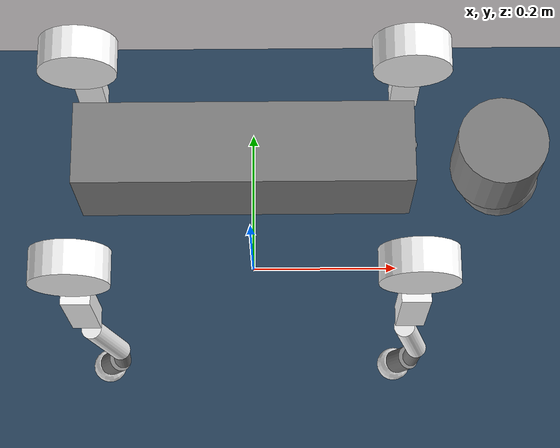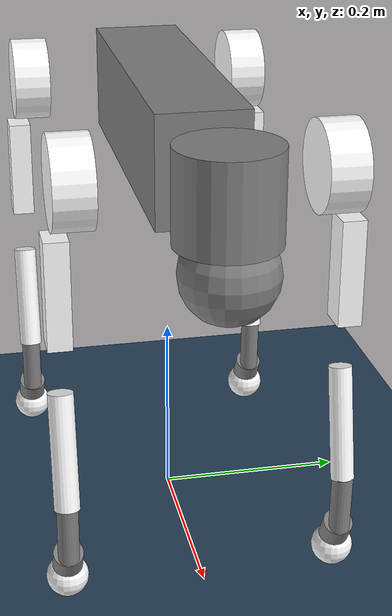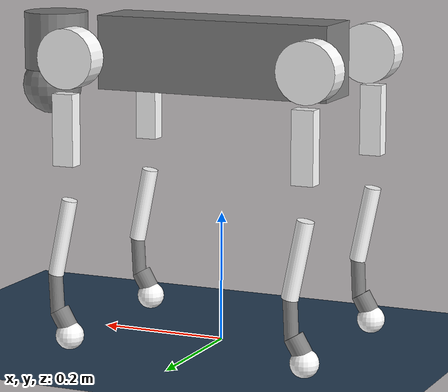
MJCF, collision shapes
<mujoco model="go2 scene">
  <compiler angle="radian" meshdir="assets/"/>

  <option impratio="100" cone="elliptic"/>

  <visual>
    <global azimuth="-140" elevation="-20"/>
    <headlight diffuse="0.6 0.6 0.6" specular="0.9 0.9 0.9"/>
    <rgba haze="0.15 0.25 0.35 1"/>
  </visual>

  <statistic meansize="0.144785" extent="0.8" center="1 0.7 1"/>

  <default>
    <joint armature="0.01" damping="0.001" frictionloss="0.1"/>
    <default class="go2">
      <joint damping="1" frictionloss="0.2"/>
      <geom condim="1" friction="0.4" margin="0.001"/>
      <default class="visual">
        <geom type="mesh" contype="0" conaffinity="0" group="2"/>
      </default>
      <default class="collision">
        <geom group="3"/>
      </default>
    </default>
  </default>

  <asset>
    <texture type="skybox" builtin="flat" rgb1="0 0 0" rgb2="0 0 0" width="512" height="3072"/>
    <texture type="2d" name="groundplane" builtin="checker" mark="edge" rgb1="0.2 0.3 0.4" rgb2="0.1 0.2 0.3" markrgb="0.8 0.8 0.8" width="300" height="300"/>
    <material name="metal" rgba="0.9 0.95 0.95 1"/>
    <material name="black" rgba="0 0 0 1"/>
    <material name="white"/>
    <material name="gray" rgba="0.671705 0.692426 0.77427 1"/>
    <material name="groundplane" texture="groundplane" texuniform="true" texrepeat="5 5" reflectance="0.2"/>
    <mesh name="base_0" file="base_0.obj"/>
    <mesh name="base_1" file="base_1.obj"/>
    <mesh name="base_2" file="base_2.obj"/>
    <mesh name="base_3" file="base_3.obj"/>
    <mesh name="base_4" file="base_4.obj"/>
    <mesh name="hip_0" file="hip_0.obj"/>
    <mesh name="hip_1" file="hip_1.obj"/>
    <mesh name="thigh_0" file="thigh_0.obj"/>
    <mesh name="thigh_1" file="thigh_1.obj"/>
    <mesh name="thigh_mirror_0" file="thigh_mirror_0.obj"/>
    <mesh name="thigh_mirror_1" file="thigh_mirror_1.obj"/>
    <mesh name="calf_0" file="calf_0.obj"/>
    <mesh name="calf_1" file="calf_1.obj"/>
    <mesh name="calf_mirror_0" file="calf_mirror_0.obj"/>
    <mesh name="calf_mirror_1" file="calf_mirror_1.obj"/>
    <mesh name="foot" file="foot.obj"/>
  </asset>

  <worldbody>
    <geom name="floor" size="0 0 0.05" type="plane" material="groundplane"/>
    <light pos="1 0 3.5" dir="0 0 -1" directional="true"/>
    <body name="base" childclass="go2" pos="0 0 0.445">
      <inertial pos="0.021112 0 -0.005366" quat="-0.000543471 0.713435 -0.00173769 0.700719" mass="6.921" diaginertia="0.107027 0.0980771 0.0244531"/>
      <joint name="root" type="free" limited="false" actuatorfrclimited="false" armature="0" damping="0" frictionloss="0"/>
      <geom class="visual" material="black" mesh="base_0"/>
      <geom class="visual" material="black" mesh="base_1"/>
      <geom class="visual" material="black" mesh="base_2"/>
      <geom class="visual" material="white" mesh="base_3"/>
      <geom class="visual" material="gray" mesh="base_4"/>
      <geom name="base_box" class="collision" size="0.1881 0.04675 0.057" type="box"/>
      <geom name="base_cyl1" class="collision" size="0.05 0.045" pos="0.285 0 0.01" type="cylinder"/>
      <geom name="base_sphere1" class="collision" size="0.047" pos="0.293 0 -0.06"/>
      <body name="FL_hip" pos="0.1934 0.0465 0">
        <inertial pos="-0.0054 0.00194 -0.000105" quat="0.497014 0.499245 0.505462 0.498237" mass="0.678" diaginertia="0.00088403 0.000596003 0.000479967"/>
        <joint name="FL_hip_joint" pos="0 0 0" axis="1 0 0" range="-1.0472 1.0472" actuatorfrcrange="-23.7 23.7"/>
        <geom class="visual" material="metal" mesh="hip_0"/>
        <geom class="visual" material="gray" mesh="hip_1"/>
        <geom class="collision" size="0.046 0.02" pos="0 0.08 0" quat="0.707107 0.707107 0 0" type="cylinder" rgba="1 1 1 1"/>
        <body name="FL_thigh" pos="0 0.0955 0">
          <inertial pos="-0.00374 -0.0223 -0.0327" quat="0.829533 0.0847635 -0.0200632 0.551623" mass="1.152" diaginertia="0.00594973 0.00584149 0.000878787"/>
          <joint name="FL_thigh_joint" pos="0 0 0" axis="0 1 0" range="-1.5708 3.4907" actuatorfrcrange="-23.7 23.7"/>
          <geom class="visual" material="metal" mesh="thigh_0"/>
          <geom class="visual" material="gray" mesh="thigh_1"/>
          <geom class="collision" size="0.055 0.01225 0.017" pos="0 0 -0.1065" quat="0.707107 0 0.707107 0" type="box" rgba="1 1 1 1"/>
          <body name="FL_calf" pos="0 0 -0.213">
            <inertial pos="0.00629595 -0.000622121 -0.141417" quat="0.710672 0.00154099 -0.00450087 0.703508" mass="0.241352" diaginertia="0.0014901 0.00146356 5.31397e-05"/>
            <joint name="FL_calf_joint" pos="0 0 0" axis="0 1 0" range="-2.7227 -0.83776" actuatorfrcrange="-35.55 35.55"/>
            <geom class="visual" material="gray" mesh="calf_0"/>
            <geom class="visual" material="black" mesh="calf_1"/>
            <geom class="collision" size="0.012 0.06" pos="0.008 0 -0.06" quat="0.994493 0 -0.104807 0" type="cylinder" rgba="1 1 1 1"/>
            <geom class="collision" size="0.011 0.0325" pos="0.02 0 -0.148" quat="0.999688 0 0.0249974 0" type="cylinder"/>
            <geom class="collision" size="0.0155 0.015" pos="0.00801333 0 -0.18745" quat="0.965093 0 0.261909 0" type="cylinder"/>
            <geom class="visual" pos="0 0 -0.213" quat="1 0 0 0" material="black" mesh="foot"/>
            <geom class="collision" size="0.022" pos="-0.002 0 -0.213" rgba="1 1 1 1"/>
          </body>
        </body>
      </body>
      <body name="FR_hip" pos="0.1934 -0.0465 0">
        <inertial pos="-0.0054 -0.00194 -0.000105" quat="0.498237 0.505462 0.499245 0.497014" mass="0.678" diaginertia="0.00088403 0.000596003 0.000479967"/>
        <joint name="FR_hip_joint" pos="0 0 0" axis="1 0 0" range="-1.0472 1.0472" actuatorfrcrange="-23.7 23.7"/>
        <geom class="visual" quat="4.63268e-05 1 0 0" material="metal" mesh="hip_0"/>
        <geom class="visual" quat="4.63268e-05 1 0 0" material="gray" mesh="hip_1"/>
        <geom class="collision" size="0.046 0.02" pos="0 -0.08 0" quat="0.707107 0.707107 0 0" type="cylinder" rgba="1 1 1 1"/>
        <body name="FR_thigh" pos="0 -0.0955 0">
          <inertial pos="-0.00374 0.0223 -0.0327" quat="0.551623 -0.0200632 0.0847635 0.829533" mass="1.152" diaginertia="0.00594973 0.00584149 0.000878787"/>
          <joint name="FR_thigh_joint" pos="0 0 0" axis="0 1 0" range="-1.5708 3.4907" actuatorfrcrange="-23.7 23.7"/>
          <geom class="visual" material="metal" mesh="thigh_mirror_0"/>
          <geom class="visual" material="gray" mesh="thigh_mirror_1"/>
          <geom class="collision" size="0.055 0.01225 0.017" pos="0 0 -0.1065" quat="0.707107 0 0.707107 0" type="box" rgba="1 1 1 1"/>
          <body name="FR_calf" pos="0 0 -0.213">
            <inertial pos="0.00629595 0.000622121 -0.141417" quat="0.703508 -0.00450087 0.00154099 0.710672" mass="0.241352" diaginertia="0.0014901 0.00146356 5.31397e-05"/>
            <joint name="FR_calf_joint" pos="0 0 0" axis="0 1 0" range="-2.7227 -0.83776" actuatorfrcrange="-35.55 35.55"/>
            <geom class="visual" material="gray" mesh="calf_mirror_0"/>
            <geom class="visual" material="black" mesh="calf_mirror_1"/>
            <geom class="collision" size="0.013 0.06" pos="0.01 0 -0.06" quat="0.995004 0 -0.0998334 0" type="cylinder" rgba="1 1 1 1"/>
            <geom class="collision" size="0.011 0.0325" pos="0.02 0 -0.148" quat="0.999688 0 0.0249974 0" type="cylinder"/>
            <geom class="collision" size="0.0155 0.015" pos="0.00801333 0 -0.18745" quat="0.965093 0 0.261909 0" type="cylinder"/>
            <geom class="visual" pos="0 0 -0.213" quat="1 0 0 0" material="black" mesh="foot"/>
            <geom class="collision" size="0.022" pos="-0.002 0 -0.213" rgba="1 1 1 1"/>
          </body>
        </body>
      </body>
      <body name="RL_hip" pos="-0.1934 0.0465 0">
        <inertial pos="0.0054 0.00194 -0.000105" quat="0.505462 0.498237 0.497014 0.499245" mass="0.678" diaginertia="0.00088403 0.000596003 0.000479967"/>
        <joint name="RL_hip_joint" pos="0 0 0" axis="1 0 0" range="-1.0472 1.0472" actuatorfrcrange="-23.7 23.7"/>
        <geom class="visual" quat="4.63268e-05 0 1 0" material="metal" mesh="hip_0"/>
        <geom class="visual" quat="4.63268e-05 0 1 0" material="gray" mesh="hip_1"/>
        <geom class="collision" size="0.046 0.02" pos="0 0.08 0" quat="0.707107 0.707107 0 0" type="cylinder" rgba="1 1 1 1"/>
        <body name="RL_thigh" pos="0 0.0955 0">
          <inertial pos="-0.00374 -0.0223 -0.0327" quat="0.829533 0.0847635 -0.0200632 0.551623" mass="1.152" diaginertia="0.00594973 0.00584149 0.000878787"/>
          <joint name="RL_thigh_joint" pos="0 0 0" axis="0 1 0" range="-0.5236 4.5379" actuatorfrcrange="-23.7 23.7"/>
          <geom class="visual" material="metal" mesh="thigh_0"/>
          <geom class="visual" material="gray" mesh="thigh_1"/>
          <geom class="collision" size="0.055 0.01225 0.017" pos="0 0 -0.1065" quat="0.707107 0 0.707107 0" type="box" rgba="1 1 1 1"/>
          <body name="RL_calf" pos="0 0 -0.213">
            <inertial pos="0.00629595 -0.000622121 -0.141417" quat="0.710672 0.00154099 -0.00450087 0.703508" mass="0.241352" diaginertia="0.0014901 0.00146356 5.31397e-05"/>
            <joint name="RL_calf_joint" pos="0 0 0" axis="0 1 0" range="-2.7227 -0.83776" actuatorfrcrange="-35.55 35.55"/>
            <geom class="visual" material="gray" mesh="calf_0"/>
            <geom class="visual" material="black" mesh="calf_1"/>
            <geom class="collision" size="0.013 0.06" pos="0.01 0 -0.06" quat="0.995004 0 -0.0998334 0" type="cylinder" rgba="1 1 1 1"/>
            <geom class="collision" size="0.011 0.0325" pos="0.02 0 -0.148" quat="0.999688 0 0.0249974 0" type="cylinder"/>
            <geom class="collision" size="0.0155 0.015" pos="0.00801333 0 -0.18745" quat="0.965093 0 0.261909 0" type="cylinder"/>
            <geom class="visual" pos="0 0 -0.213" quat="1 0 0 0" material="black" mesh="foot"/>
            <geom class="collision" size="0.022" pos="-0.002 0 -0.213" rgba="1 1 1 1"/>
          </body>
        </body>
      </body>
      <body name="RR_hip" pos="-0.1934 -0.0465 0">
        <inertial pos="0.0054 -0.00194 -0.000105" quat="0.499245 0.497014 0.498237 0.505462" mass="0.678" diaginertia="0.00088403 0.000596003 0.000479967"/>
        <joint name="RR_hip_joint" pos="0 0 0" axis="1 0 0" range="-1.0472 1.0472" actuatorfrcrange="-23.7 23.7"/>
        <geom class="visual" quat="2.14617e-09 4.63268e-05 4.63268e-05 -1" material="metal" mesh="hip_0"/>
        <geom class="visual" quat="2.14617e-09 4.63268e-05 4.63268e-05 -1" material="gray" mesh="hip_1"/>
        <geom class="collision" size="0.046 0.02" pos="0 -0.08 0" quat="0.707107 0.707107 0 0" type="cylinder" rgba="1 1 1 1"/>
        <body name="RR_thigh" pos="0 -0.0955 0">
          <inertial pos="-0.00374 0.0223 -0.0327" quat="0.551623 -0.0200632 0.0847635 0.829533" mass="1.152" diaginertia="0.00594973 0.00584149 0.000878787"/>
          <joint name="RR_thigh_joint" pos="0 0 0" axis="0 1 0" range="-0.5236 4.5379" actuatorfrcrange="-23.7 23.7"/>
          <geom class="visual" material="metal" mesh="thigh_mirror_0"/>
          <geom class="visual" material="gray" mesh="thigh_mirror_1"/>
          <geom class="collision" size="0.055 0.01225 0.017" pos="0 0 -0.1065" quat="0.707107 0 0.707107 0" type="box" rgba="1 1 1 1"/>
          <body name="RR_calf" pos="0 0 -0.213">
            <inertial pos="0.00629595 0.000622121 -0.141417" quat="0.703508 -0.00450087 0.00154099 0.710672" mass="0.241352" diaginertia="0.0014901 0.00146356 5.31397e-05"/>
            <joint name="RR_calf_joint" pos="0 0 0" axis="0 1 0" range="-2.7227 -0.83776" actuatorfrcrange="-35.55 35.55"/>
            <geom class="visual" material="gray" mesh="calf_mirror_0"/>
            <geom class="visual" material="black" mesh="calf_mirror_1"/>
            <geom class="collision" size="0.013 0.06" pos="0.01 0 -0.06" quat="0.995004 0 -0.0998334 0" type="cylinder" rgba="1 1 1 1"/>
            <geom class="collision" size="0.011 0.0325" pos="0.02 0 -0.148" quat="0.999688 0 0.0249974 0" type="cylinder"/>
            <geom class="collision" size="0.0155 0.015" pos="0.00801333 0 -0.18745" quat="0.965093 0 0.261909 0" type="cylinder"/>
            <geom class="visual" pos="0 0 -0.213" quat="1 0 0 0" material="black" mesh="foot"/>
            <geom class="collision" size="0.022" pos="-0.002 0 -0.213" rgba="1 1 1 1"/>
          </body>
        </body>
      </body>
    </body>
  </worldbody>

  <actuator>
    <general name="FL_hip" joint="FL_hip_joint"/>
    <general name="FL_thigh" joint="FL_thigh_joint"/>
    <general name="FL_calf" joint="FL_calf_joint"/>
    <general name="FR_hip" joint="FR_hip_joint"/>
    <general name="FR_thigh" joint="FR_thigh_joint"/>
    <general name="FR_calf" joint="FR_calf_joint"/>
    <general name="RL_hip" joint="RL_hip_joint"/>
    <general name="RL_thigh" joint="RL_thigh_joint"/>
    <general name="RL_calf" joint="RL_calf_joint"/>
    <general name="RR_hip" joint="RR_hip_joint"/>
    <general name="RR_thigh" joint="RR_thigh_joint"/>
    <general name="RR_calf" joint="RR_calf_joint"/>
  </actuator>
</mujoco>
